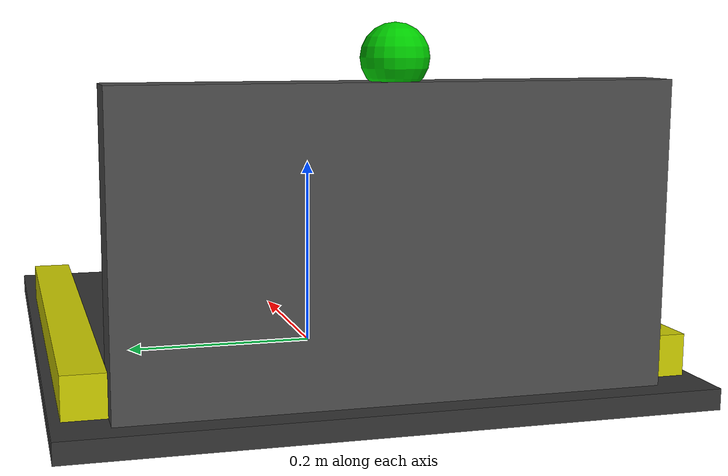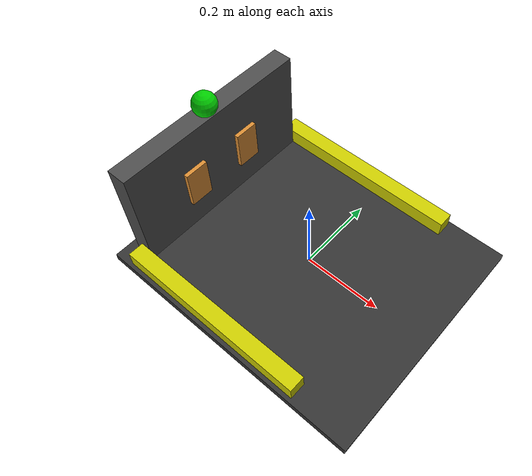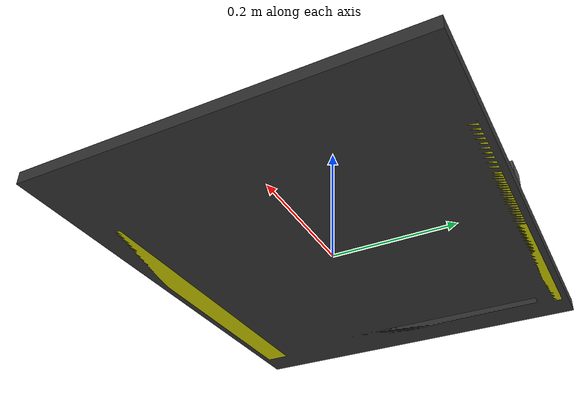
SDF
<?xml version="1.0" ?>
<sdf version="1.8">
  <model name="charging_station">
    <static>true</static>

    <!-- Ground platform -->
    <link name="base_link">
      <visual name="platform_visual">
        <pose>0 0 0.01 0 0 0</pose>
        <geometry>
          <box><size>0.7 0.6 0.02</size></box>
        </geometry>
        <material>
          <ambient>0.15 0.15 0.15 1</ambient>
          <diffuse>0.2 0.2 0.2 1</diffuse>
        </material>
      </visual>
      <!-- No collision on platform so robot wheels can drive onto it -->

      <!-- Back wall / docking contact panel -->
      <visual name="back_panel_visual">
        <pose>-0.3 0 0.15 0 0 0</pose>
        <geometry>
          <box><size>0.05 0.5 0.3</size></box>
        </geometry>
        <material>
          <ambient>0.2 0.2 0.2 1</ambient>
          <diffuse>0.3 0.3 0.3 1</diffuse>
        </material>
      </visual>
      <collision name="back_panel_collision">
        <pose>-0.3 0 0.15 0 0 0</pose>
        <geometry>
          <box><size>0.05 0.5 0.3</size></box>
        </geometry>
      </collision>

      <!-- Left guide rail -->
      <visual name="left_rail_visual">
        <pose>-0.05 0.27 0.03 0 0 0</pose>
        <geometry>
          <box><size>0.5 0.04 0.06</size></box>
        </geometry>
        <material>
          <ambient>0.6 0.6 0.0 1</ambient>
          <diffuse>0.8 0.8 0.0 1</diffuse>
        </material>
      </visual>
      <!-- No collision on rails so robot can pass through -->

      <!-- Right guide rail -->
      <visual name="right_rail_visual">
        <pose>-0.05 -0.27 0.03 0 0 0</pose>
        <geometry>
          <box><size>0.5 0.04 0.06</size></box>
        </geometry>
        <material>
          <ambient>0.6 0.6 0.0 1</ambient>
          <diffuse>0.8 0.8 0.0 1</diffuse>
        </material>
      </visual>
      <!-- No collision on rails so robot can pass through -->

      <!-- Charging contact plates (on back panel, copper color) -->
      <visual name="contact_left_visual">
        <pose>-0.27 0.08 0.15 0 0 0</pose>
        <geometry>
          <box><size>0.01 0.06 0.1</size></box>
        </geometry>
        <material>
          <ambient>0.7 0.4 0.1 1</ambient>
          <diffuse>0.85 0.55 0.2 1</diffuse>
        </material>
      </visual>
      <visual name="contact_right_visual">
        <pose>-0.27 -0.08 0.15 0 0 0</pose>
        <geometry>
          <box><size>0.01 0.06 0.1</size></box>
        </geometry>
        <material>
          <ambient>0.7 0.4 0.1 1</ambient>
          <diffuse>0.85 0.55 0.2 1</diffuse>
        </material>
      </visual>

      <!-- Status indicator light -->
      <visual name="status_light_visual">
        <pose>-0.3 0 0.32 0 0 0</pose>
        <geometry>
          <sphere><radius>0.03</radius></sphere>
        </geometry>
        <material>
          <ambient>0.0 0.6 0.0 1</ambient>
          <diffuse>0.0 0.8 0.0 1</diffuse>
        </material>
      </visual>
    </link>

    <!-- Fix to world -->
    <joint name="world_fix" type="fixed">
      <parent>world</parent>
      <child>base_link</child>
    </joint>

  </model>
</sdf>
